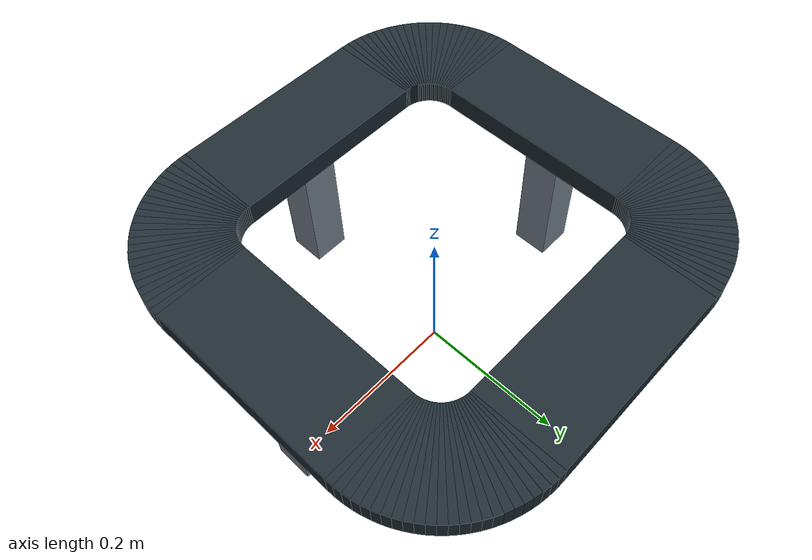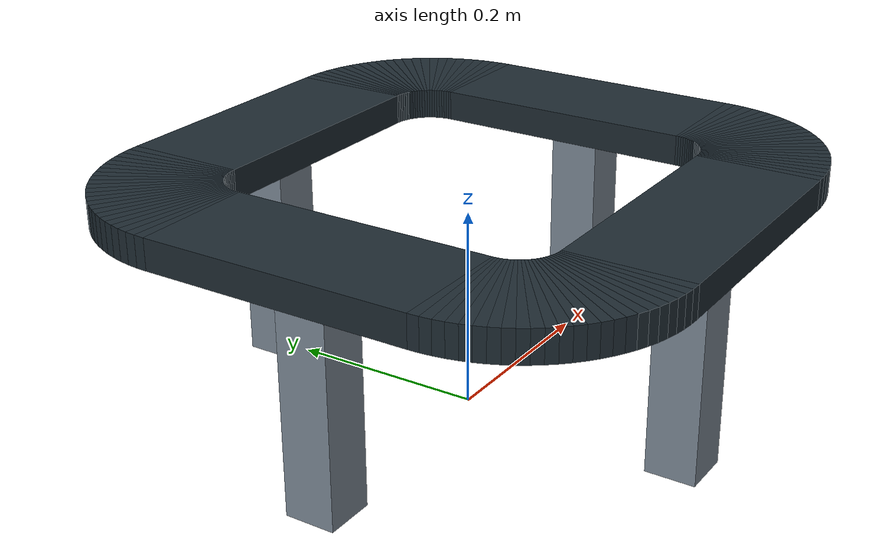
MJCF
<mujoco model="rounded_square_conveyor">
  <compiler angle="radian" />
  <custom>
    <numeric name="conveyor_path_parameters" data="0.23 0.1 0.06" />
  </custom>
  <asset>
    <mesh name="belt_mesh_0" vertex="0.170000000 0.130000000 -0.015000000 0.290000000 0.130000000 -0.015000000 0.289657428 0.140464501 -0.015000000 0.169914357 0.132616125 -0.015000000 0.170000000 0.130000000 0.015000000 0.290000000 0.130000000 0.015000000 0.289657428 0.140464501 0.015000000 0.169914357 0.132616125 0.015000000" />
    <mesh name="belt_mesh_1" vertex="0.169914357 0.132616125 -0.015000000 0.289657428 0.140464501 -0.015000000 0.288631178 0.150884191 -0.015000000 0.169657794 0.135221048 -0.015000000 0.169914357 0.132616125 0.015000000 0.289657428 0.140464501 0.015000000 0.288631178 0.150884191 0.015000000 0.169657794 0.135221048 0.015000000" />
    <mesh name="belt_mesh_2" vertex="0.169657794 0.135221048 -0.015000000 0.288631178 0.150884191 -0.015000000 0.286925645 0.161214452 -0.015000000 0.169231411 0.137803613 -0.015000000 0.169657794 0.135221048 0.015000000 0.288631178 0.150884191 0.015000000 0.286925645 0.161214452 0.015000000 0.169231411 0.137803613 0.015000000" />
    <mesh name="belt_mesh_3" vertex="0.169231411 0.137803613 -0.015000000 0.286925645 0.161214452 -0.015000000 0.284548132 0.171411047 -0.015000000 0.168637033 0.140352762 -0.015000000 0.169231411 0.137803613 0.015000000 0.286925645 0.161214452 0.015000000 0.284548132 0.171411047 0.015000000 0.168637033 0.140352762 0.015000000" />
    <mesh name="belt_mesh_4" vertex="0.168637033 0.140352762 -0.015000000 0.284548132 0.171411047 -0.015000000 0.281508821 0.181430314 -0.015000000 0.167877205 0.142857579 -0.015000000 0.168637033 0.140352762 0.015000000 0.284548132 0.171411047 0.015000000 0.281508821 0.181430314 0.015000000 0.167877205 0.142857579 0.015000000" />
    <mesh name="belt_mesh_5" vertex="0.167877205 0.142857579 -0.015000000 0.281508821 0.181430314 -0.015000000 0.277820725 0.191229349 -0.015000000 0.166955181 0.145307337 -0.015000000 0.167877205 0.142857579 0.015000000 0.281508821 0.181430314 0.015000000 0.277820725 0.191229349 0.015000000 0.166955181 0.145307337 0.015000000" />
    <mesh name="belt_mesh_6" vertex="0.166955181 0.145307337 -0.015000000 0.277820725 0.191229349 -0.015000000 0.273499639 0.200766190 -0.015000000 0.165874910 0.147691548 -0.015000000 0.166955181 0.145307337 0.015000000 0.277820725 0.191229349 0.015000000 0.273499639 0.200766190 0.015000000 0.165874910 0.147691548 0.015000000" />
    <mesh name="belt_mesh_7" vertex="0.165874910 0.147691548 -0.015000000 0.273499639 0.200766190 -0.015000000 0.268564065 0.210000000 -0.015000000 0.164641016 0.150000000 -0.015000000 0.165874910 0.147691548 0.015000000 0.273499639 0.200766190 0.015000000 0.268564065 0.210000000 0.015000000 0.164641016 0.150000000 0.015000000" />
    <mesh name="belt_mesh_8" vertex="0.164641016 0.150000000 -0.015000000 0.268564065 0.210000000 -0.015000000 0.263035138 0.218891237 -0.015000000 0.163258784 0.152222809 -0.015000000 0.164641016 0.150000000 0.015000000 0.268564065 0.210000000 0.015000000 0.263035138 0.218891237 0.015000000 0.163258784 0.152222809 0.015000000" />
    <mesh name="belt_mesh_9" vertex="0.163258784 0.152222809 -0.015000000 0.263035138 0.218891237 -0.015000000 0.256936534 0.227401829 -0.015000000 0.161734134 0.154350457 -0.015000000 0.163258784 0.152222809 0.015000000 0.263035138 0.218891237 0.015000000 0.256936534 0.227401829 0.015000000 0.161734134 0.154350457 0.015000000" />
    <mesh name="belt_mesh_10" vertex="0.161734134 0.154350457 -0.015000000 0.256936534 0.227401829 -0.015000000 0.250294369 0.235495330 -0.015000000 0.160073592 0.156373833 -0.015000000 0.161734134 0.154350457 0.015000000 0.256936534 0.227401829 0.015000000 0.250294369 0.235495330 0.015000000 0.160073592 0.156373833 0.015000000" />
    <mesh name="belt_mesh_11" vertex="0.160073592 0.156373833 -0.015000000 0.250294369 0.235495330 -0.015000000 0.243137085 0.243137085 -0.015000000 0.158284271 0.158284271 -0.015000000 0.160073592 0.156373833 0.015000000 0.250294369 0.235495330 0.015000000 0.243137085 0.243137085 0.015000000 0.158284271 0.158284271 0.015000000" />
    <mesh name="belt_mesh_12" vertex="0.158284271 0.158284271 -0.015000000 0.243137085 0.243137085 -0.015000000 0.235495330 0.250294369 -0.015000000 0.156373833 0.160073592 -0.015000000 0.158284271 0.158284271 0.015000000 0.243137085 0.243137085 0.015000000 0.235495330 0.250294369 0.015000000 0.156373833 0.160073592 0.015000000" />
    <mesh name="belt_mesh_13" vertex="0.156373833 0.160073592 -0.015000000 0.235495330 0.250294369 -0.015000000 0.227401829 0.256936534 -0.015000000 0.154350457 0.161734134 -0.015000000 0.156373833 0.160073592 0.015000000 0.235495330 0.250294369 0.015000000 0.227401829 0.256936534 0.015000000 0.154350457 0.161734134 0.015000000" />
    <mesh name="belt_mesh_14" vertex="0.154350457 0.161734134 -0.015000000 0.227401829 0.256936534 -0.015000000 0.218891237 0.263035138 -0.015000000 0.152222809 0.163258784 -0.015000000 0.154350457 0.161734134 0.015000000 0.227401829 0.256936534 0.015000000 0.218891237 0.263035138 0.015000000 0.152222809 0.163258784 0.015000000" />
    <mesh name="belt_mesh_15" vertex="0.152222809 0.163258784 -0.015000000 0.218891237 0.263035138 -0.015000000 0.210000000 0.268564065 -0.015000000 0.150000000 0.164641016 -0.015000000 0.152222809 0.163258784 0.015000000 0.218891237 0.263035138 0.015000000 0.210000000 0.268564065 0.015000000 0.150000000 0.164641016 0.015000000" />
    <mesh name="belt_mesh_16" vertex="0.150000000 0.164641016 -0.015000000 0.210000000 0.268564065 -0.015000000 0.200766190 0.273499639 -0.015000000 0.147691548 0.165874910 -0.015000000 0.150000000 0.164641016 0.015000000 0.210000000 0.268564065 0.015000000 0.200766190 0.273499639 0.015000000 0.147691548 0.165874910 0.015000000" />
    <mesh name="belt_mesh_17" vertex="0.147691548 0.165874910 -0.015000000 0.200766190 0.273499639 -0.015000000 0.191229349 0.277820725 -0.015000000 0.145307337 0.166955181 -0.015000000 0.147691548 0.165874910 0.015000000 0.200766190 0.273499639 0.015000000 0.191229349 0.277820725 0.015000000 0.145307337 0.166955181 0.015000000" />
    <mesh name="belt_mesh_18" vertex="0.145307337 0.166955181 -0.015000000 0.191229349 0.277820725 -0.015000000 0.181430314 0.281508821 -0.015000000 0.142857579 0.167877205 -0.015000000 0.145307337 0.166955181 0.015000000 0.191229349 0.277820725 0.015000000 0.181430314 0.281508821 0.015000000 0.142857579 0.167877205 0.015000000" />
    <mesh name="belt_mesh_19" vertex="0.142857579 0.167877205 -0.015000000 0.181430314 0.281508821 -0.015000000 0.171411047 0.284548132 -0.015000000 0.140352762 0.168637033 -0.015000000 0.142857579 0.167877205 0.015000000 0.181430314 0.281508821 0.015000000 0.171411047 0.284548132 0.015000000 0.140352762 0.168637033 0.015000000" />
    <mesh name="belt_mesh_20" vertex="0.140352762 0.168637033 -0.015000000 0.171411047 0.284548132 -0.015000000 0.161214452 0.286925645 -0.015000000 0.137803613 0.169231411 -0.015000000 0.140352762 0.168637033 0.015000000 0.171411047 0.284548132 0.015000000 0.161214452 0.286925645 0.015000000 0.137803613 0.169231411 0.015000000" />
    <mesh name="belt_mesh_21" vertex="0.137803613 0.169231411 -0.015000000 0.161214452 0.286925645 -0.015000000 0.150884191 0.288631178 -0.015000000 0.135221048 0.169657794 -0.015000000 0.137803613 0.169231411 0.015000000 0.161214452 0.286925645 0.015000000 0.150884191 0.288631178 0.015000000 0.135221048 0.169657794 0.015000000" />
    <mesh name="belt_mesh_22" vertex="0.135221048 0.169657794 -0.015000000 0.150884191 0.288631178 -0.015000000 0.140464501 0.289657428 -0.015000000 0.132616125 0.169914357 -0.015000000 0.135221048 0.169657794 0.015000000 0.150884191 0.288631178 0.015000000 0.140464501 0.289657428 0.015000000 0.132616125 0.169914357 0.015000000" />
    <mesh name="belt_mesh_23" vertex="0.132616125 0.169914357 -0.015000000 0.140464501 0.289657428 -0.015000000 0.130000000 0.290000000 -0.015000000 0.130000000 0.170000000 -0.015000000 0.132616125 0.169914357 0.015000000 0.140464501 0.289657428 0.015000000 0.130000000 0.290000000 0.015000000 0.130000000 0.170000000 0.015000000" />
    <mesh name="belt_mesh_24" vertex="-0.130000000 0.170000000 -0.015000000 -0.130000000 0.290000000 -0.015000000 -0.140464501 0.289657428 -0.015000000 -0.132616125 0.169914357 -0.015000000 -0.130000000 0.170000000 0.015000000 -0.130000000 0.290000000 0.015000000 -0.140464501 0.289657428 0.015000000 -0.132616125 0.169914357 0.015000000" />
    <mesh name="belt_mesh_25" vertex="-0.132616125 0.169914357 -0.015000000 -0.140464501 0.289657428 -0.015000000 -0.150884191 0.288631178 -0.015000000 -0.135221048 0.169657794 -0.015000000 -0.132616125 0.169914357 0.015000000 -0.140464501 0.289657428 0.015000000 -0.150884191 0.288631178 0.015000000 -0.135221048 0.169657794 0.015000000" />
    <mesh name="belt_mesh_26" vertex="-0.135221048 0.169657794 -0.015000000 -0.150884191 0.288631178 -0.015000000 -0.161214452 0.286925645 -0.015000000 -0.137803613 0.169231411 -0.015000000 -0.135221048 0.169657794 0.015000000 -0.150884191 0.288631178 0.015000000 -0.161214452 0.286925645 0.015000000 -0.137803613 0.169231411 0.015000000" />
    <mesh name="belt_mesh_27" vertex="-0.137803613 0.169231411 -0.015000000 -0.161214452 0.286925645 -0.015000000 -0.171411047 0.284548132 -0.015000000 -0.140352762 0.168637033 -0.015000000 -0.137803613 0.169231411 0.015000000 -0.161214452 0.286925645 0.015000000 -0.171411047 0.284548132 0.015000000 -0.140352762 0.168637033 0.015000000" />
    <mesh name="belt_mesh_28" vertex="-0.140352762 0.168637033 -0.015000000 -0.171411047 0.284548132 -0.015000000 -0.181430314 0.281508821 -0.015000000 -0.142857579 0.167877205 -0.015000000 -0.140352762 0.168637033 0.015000000 -0.171411047 0.284548132 0.015000000 -0.181430314 0.281508821 0.015000000 -0.142857579 0.167877205 0.015000000" />
    <mesh name="belt_mesh_29" vertex="-0.142857579 0.167877205 -0.015000000 -0.181430314 0.281508821 -0.015000000 -0.191229349 0.277820725 -0.015000000 -0.145307337 0.166955181 -0.015000000 -0.142857579 0.167877205 0.015000000 -0.181430314 0.281508821 0.015000000 -0.191229349 0.277820725 0.015000000 -0.145307337 0.166955181 0.015000000" />
    <mesh name="belt_mesh_30" vertex="-0.145307337 0.166955181 -0.015000000 -0.191229349 0.277820725 -0.015000000 -0.200766190 0.273499639 -0.015000000 -0.147691548 0.165874910 -0.015000000 -0.145307337 0.166955181 0.015000000 -0.191229349 0.277820725 0.015000000 -0.200766190 0.273499639 0.015000000 -0.147691548 0.165874910 0.015000000" />
    <mesh name="belt_mesh_31" vertex="-0.147691548 0.165874910 -0.015000000 -0.200766190 0.273499639 -0.015000000 -0.210000000 0.268564065 -0.015000000 -0.150000000 0.164641016 -0.015000000 -0.147691548 0.165874910 0.015000000 -0.200766190 0.273499639 0.015000000 -0.210000000 0.268564065 0.015000000 -0.150000000 0.164641016 0.015000000" />
    <mesh name="belt_mesh_32" vertex="-0.150000000 0.164641016 -0.015000000 -0.210000000 0.268564065 -0.015000000 -0.218891237 0.263035138 -0.015000000 -0.152222809 0.163258784 -0.015000000 -0.150000000 0.164641016 0.015000000 -0.210000000 0.268564065 0.015000000 -0.218891237 0.263035138 0.015000000 -0.152222809 0.163258784 0.015000000" />
    <mesh name="belt_mesh_33" vertex="-0.152222809 0.163258784 -0.015000000 -0.218891237 0.263035138 -0.015000000 -0.227401829 0.256936534 -0.015000000 -0.154350457 0.161734134 -0.015000000 -0.152222809 0.163258784 0.015000000 -0.218891237 0.263035138 0.015000000 -0.227401829 0.256936534 0.015000000 -0.154350457 0.161734134 0.015000000" />
    <mesh name="belt_mesh_34" vertex="-0.154350457 0.161734134 -0.015000000 -0.227401829 0.256936534 -0.015000000 -0.235495330 0.250294369 -0.015000000 -0.156373833 0.160073592 -0.015000000 -0.154350457 0.161734134 0.015000000 -0.227401829 0.256936534 0.015000000 -0.235495330 0.250294369 0.015000000 -0.156373833 0.160073592 0.015000000" />
    <mesh name="belt_mesh_35" vertex="-0.156373833 0.160073592 -0.015000000 -0.235495330 0.250294369 -0.015000000 -0.243137085 0.243137085 -0.015000000 -0.158284271 0.158284271 -0.015000000 -0.156373833 0.160073592 0.015000000 -0.235495330 0.250294369 0.015000000 -0.243137085 0.243137085 0.015000000 -0.158284271 0.158284271 0.015000000" />
    <mesh name="belt_mesh_36" vertex="-0.158284271 0.158284271 -0.015000000 -0.243137085 0.243137085 -0.015000000 -0.250294369 0.235495330 -0.015000000 -0.160073592 0.156373833 -0.015000000 -0.158284271 0.158284271 0.015000000 -0.243137085 0.243137085 0.015000000 -0.250294369 0.235495330 0.015000000 -0.160073592 0.156373833 0.015000000" />
    <mesh name="belt_mesh_37" vertex="-0.160073592 0.156373833 -0.015000000 -0.250294369 0.235495330 -0.015000000 -0.256936534 0.227401829 -0.015000000 -0.161734134 0.154350457 -0.015000000 -0.160073592 0.156373833 0.015000000 -0.250294369 0.235495330 0.015000000 -0.256936534 0.227401829 0.015000000 -0.161734134 0.154350457 0.015000000" />
    <mesh name="belt_mesh_38" vertex="-0.161734134 0.154350457 -0.015000000 -0.256936534 0.227401829 -0.015000000 -0.263035138 0.218891237 -0.015000000 -0.163258784 0.152222809 -0.015000000 -0.161734134 0.154350457 0.015000000 -0.256936534 0.227401829 0.015000000 -0.263035138 0.218891237 0.015000000 -0.163258784 0.152222809 0.015000000" />
    <mesh name="belt_mesh_39" vertex="-0.163258784 0.152222809 -0.015000000 -0.263035138 0.218891237 -0.015000000 -0.268564065 0.210000000 -0.015000000 -0.164641016 0.150000000 -0.015000000 -0.163258784 0.152222809 0.015000000 -0.263035138 0.218891237 0.015000000 -0.268564065 0.210000000 0.015000000 -0.164641016 0.150000000 0.015000000" />
    <mesh name="belt_mesh_40" vertex="-0.164641016 0.150000000 -0.015000000 -0.268564065 0.210000000 -0.015000000 -0.273499639 0.200766190 -0.015000000 -0.165874910 0.147691548 -0.015000000 -0.164641016 0.150000000 0.015000000 -0.268564065 0.210000000 0.015000000 -0.273499639 0.200766190 0.015000000 -0.165874910 0.147691548 0.015000000" />
    <mesh name="belt_mesh_41" vertex="-0.165874910 0.147691548 -0.015000000 -0.273499639 0.200766190 -0.015000000 -0.277820725 0.191229349 -0.015000000 -0.166955181 0.145307337 -0.015000000 -0.165874910 0.147691548 0.015000000 -0.273499639 0.200766190 0.015000000 -0.277820725 0.191229349 0.015000000 -0.166955181 0.145307337 0.015000000" />
    <mesh name="belt_mesh_42" vertex="-0.166955181 0.145307337 -0.015000000 -0.277820725 0.191229349 -0.015000000 -0.281508821 0.181430314 -0.015000000 -0.167877205 0.142857579 -0.015000000 -0.166955181 0.145307337 0.015000000 -0.277820725 0.191229349 0.015000000 -0.281508821 0.181430314 0.015000000 -0.167877205 0.142857579 0.015000000" />
    <mesh name="belt_mesh_43" vertex="-0.167877205 0.142857579 -0.015000000 -0.281508821 0.181430314 -0.015000000 -0.284548132 0.171411047 -0.015000000 -0.168637033 0.140352762 -0.015000000 -0.167877205 0.142857579 0.015000000 -0.281508821 0.181430314 0.015000000 -0.284548132 0.171411047 0.015000000 -0.168637033 0.140352762 0.015000000" />
    <mesh name="belt_mesh_44" vertex="-0.168637033 0.140352762 -0.015000000 -0.284548132 0.171411047 -0.015000000 -0.286925645 0.161214452 -0.015000000 -0.169231411 0.137803613 -0.015000000 -0.168637033 0.140352762 0.015000000 -0.284548132 0.171411047 0.015000000 -0.286925645 0.161214452 0.015000000 -0.169231411 0.137803613 0.015000000" />
    <mesh name="belt_mesh_45" vertex="-0.169231411 0.137803613 -0.015000000 -0.286925645 0.161214452 -0.015000000 -0.288631178 0.150884191 -0.015000000 -0.169657794 0.135221048 -0.015000000 -0.169231411 0.137803613 0.015000000 -0.286925645 0.161214452 0.015000000 -0.288631178 0.150884191 0.015000000 -0.169657794 0.135221048 0.015000000" />
    <mesh name="belt_mesh_46" vertex="-0.169657794 0.135221048 -0.015000000 -0.288631178 0.150884191 -0.015000000 -0.289657428 0.140464501 -0.015000000 -0.169914357 0.132616125 -0.015000000 -0.169657794 0.135221048 0.015000000 -0.288631178 0.150884191 0.015000000 -0.289657428 0.140464501 0.015000000 -0.169914357 0.132616125 0.015000000" />
    <mesh name="belt_mesh_47" vertex="-0.169914357 0.132616125 -0.015000000 -0.289657428 0.140464501 -0.015000000 -0.290000000 0.130000000 -0.015000000 -0.170000000 0.130000000 -0.015000000 -0.169914357 0.132616125 0.015000000 -0.289657428 0.140464501 0.015000000 -0.290000000 0.130000000 0.015000000 -0.170000000 0.130000000 0.015000000" />
    <mesh name="belt_mesh_48" vertex="-0.170000000 -0.130000000 -0.015000000 -0.290000000 -0.130000000 -0.015000000 -0.289657428 -0.140464501 -0.015000000 -0.169914357 -0.132616125 -0.015000000 -0.170000000 -0.130000000 0.015000000 -0.290000000 -0.130000000 0.015000000 -0.289657428 -0.140464501 0.015000000 -0.169914357 -0.132616125 0.015000000" />
    <mesh name="belt_mesh_49" vertex="-0.169914357 -0.132616125 -0.015000000 -0.289657428 -0.140464501 -0.015000000 -0.288631178 -0.150884191 -0.015000000 -0.169657794 -0.135221048 -0.015000000 -0.169914357 -0.132616125 0.015000000 -0.289657428 -0.140464501 0.015000000 -0.288631178 -0.150884191 0.015000000 -0.169657794 -0.135221048 0.015000000" />
    <mesh name="belt_mesh_50" vertex="-0.169657794 -0.135221048 -0.015000000 -0.288631178 -0.150884191 -0.015000000 -0.286925645 -0.161214452 -0.015000000 -0.169231411 -0.137803613 -0.015000000 -0.169657794 -0.135221048 0.015000000 -0.288631178 -0.150884191 0.015000000 -0.286925645 -0.161214452 0.015000000 -0.169231411 -0.137803613 0.015000000" />
    <mesh name="belt_mesh_51" vertex="-0.169231411 -0.137803613 -0.015000000 -0.286925645 -0.161214452 -0.015000000 -0.284548132 -0.171411047 -0.015000000 -0.168637033 -0.140352762 -0.015000000 -0.169231411 -0.137803613 0.015000000 -0.286925645 -0.161214452 0.015000000 -0.284548132 -0.171411047 0.015000000 -0.168637033 -0.140352762 0.015000000" />
    <mesh name="belt_mesh_52" vertex="-0.168637033 -0.140352762 -0.015000000 -0.284548132 -0.171411047 -0.015000000 -0.281508821 -0.181430314 -0.015000000 -0.167877205 -0.142857579 -0.015000000 -0.168637033 -0.140352762 0.015000000 -0.284548132 -0.171411047 0.015000000 -0.281508821 -0.181430314 0.015000000 -0.167877205 -0.142857579 0.015000000" />
    <mesh name="belt_mesh_53" vertex="-0.167877205 -0.142857579 -0.015000000 -0.281508821 -0.181430314 -0.015000000 -0.277820725 -0.191229349 -0.015000000 -0.166955181 -0.145307337 -0.015000000 -0.167877205 -0.142857579 0.015000000 -0.281508821 -0.181430314 0.015000000 -0.277820725 -0.191229349 0.015000000 -0.166955181 -0.145307337 0.015000000" />
    <mesh name="belt_mesh_54" vertex="-0.166955181 -0.145307337 -0.015000000 -0.277820725 -0.191229349 -0.015000000 -0.273499639 -0.200766190 -0.015000000 -0.165874910 -0.147691548 -0.015000000 -0.166955181 -0.145307337 0.015000000 -0.277820725 -0.191229349 0.015000000 -0.273499639 -0.200766190 0.015000000 -0.165874910 -0.147691548 0.015000000" />
    <mesh name="belt_mesh_55" vertex="-0.165874910 -0.147691548 -0.015000000 -0.273499639 -0.200766190 -0.015000000 -0.268564065 -0.210000000 -0.015000000 -0.164641016 -0.150000000 -0.015000000 -0.165874910 -0.147691548 0.015000000 -0.273499639 -0.200766190 0.015000000 -0.268564065 -0.210000000 0.015000000 -0.164641016 -0.150000000 0.015000000" />
    <mesh name="belt_mesh_56" vertex="-0.164641016 -0.150000000 -0.015000000 -0.268564065 -0.210000000 -0.015000000 -0.263035138 -0.218891237 -0.015000000 -0.163258784 -0.152222809 -0.015000000 -0.164641016 -0.150000000 0.015000000 -0.268564065 -0.210000000 0.015000000 -0.263035138 -0.218891237 0.015000000 -0.163258784 -0.152222809 0.015000000" />
    <mesh name="belt_mesh_57" vertex="-0.163258784 -0.152222809 -0.015000000 -0.263035138 -0.218891237 -0.015000000 -0.256936534 -0.227401829 -0.015000000 -0.161734134 -0.154350457 -0.015000000 -0.163258784 -0.152222809 0.015000000 -0.263035138 -0.218891237 0.015000000 -0.256936534 -0.227401829 0.015000000 -0.161734134 -0.154350457 0.015000000" />
    <mesh name="belt_mesh_58" vertex="-0.161734134 -0.154350457 -0.015000000 -0.256936534 -0.227401829 -0.015000000 -0.250294369 -0.235495330 -0.015000000 -0.160073592 -0.156373833 -0.015000000 -0.161734134 -0.154350457 0.015000000 -0.256936534 -0.227401829 0.015000000 -0.250294369 -0.235495330 0.015000000 -0.160073592 -0.156373833 0.015000000" />
    <mesh name="belt_mesh_59" vertex="-0.160073592 -0.156373833 -0.015000000 -0.250294369 -0.235495330 -0.015000000 -0.243137085 -0.243137085 -0.015000000 -0.158284271 -0.158284271 -0.015000000 -0.160073592 -0.156373833 0.015000000 -0.250294369 -0.235495330 0.015000000 -0.243137085 -0.243137085 0.015000000 -0.158284271 -0.158284271 0.015000000" />
    <mesh name="belt_mesh_60" vertex="-0.158284271 -0.158284271 -0.015000000 -0.243137085 -0.243137085 -0.015000000 -0.235495330 -0.250294369 -0.015000000 -0.156373833 -0.160073592 -0.015000000 -0.158284271 -0.158284271 0.015000000 -0.243137085 -0.243137085 0.015000000 -0.235495330 -0.250294369 0.015000000 -0.156373833 -0.160073592 0.015000000" />
    <mesh name="belt_mesh_61" vertex="-0.156373833 -0.160073592 -0.015000000 -0.235495330 -0.250294369 -0.015000000 -0.227401829 -0.256936534 -0.015000000 -0.154350457 -0.161734134 -0.015000000 -0.156373833 -0.160073592 0.015000000 -0.235495330 -0.250294369 0.015000000 -0.227401829 -0.256936534 0.015000000 -0.154350457 -0.161734134 0.015000000" />
    <mesh name="belt_mesh_62" vertex="-0.154350457 -0.161734134 -0.015000000 -0.227401829 -0.256936534 -0.015000000 -0.218891237 -0.263035138 -0.015000000 -0.152222809 -0.163258784 -0.015000000 -0.154350457 -0.161734134 0.015000000 -0.227401829 -0.256936534 0.015000000 -0.218891237 -0.263035138 0.015000000 -0.152222809 -0.163258784 0.015000000" />
    <mesh name="belt_mesh_63" vertex="-0.152222809 -0.163258784 -0.015000000 -0.218891237 -0.263035138 -0.015000000 -0.210000000 -0.268564065 -0.015000000 -0.150000000 -0.164641016 -0.015000000 -0.152222809 -0.163258784 0.015000000 -0.218891237 -0.263035138 0.015000000 -0.210000000 -0.268564065 0.015000000 -0.150000000 -0.164641016 0.015000000" />
    <mesh name="belt_mesh_64" vertex="-0.150000000 -0.164641016 -0.015000000 -0.210000000 -0.268564065 -0.015000000 -0.200766190 -0.273499639 -0.015000000 -0.147691548 -0.165874910 -0.015000000 -0.150000000 -0.164641016 0.015000000 -0.210000000 -0.268564065 0.015000000 -0.200766190 -0.273499639 0.015000000 -0.147691548 -0.165874910 0.015000000" />
    <mesh name="belt_mesh_65" vertex="-0.147691548 -0.165874910 -0.015000000 -0.200766190 -0.273499639 -0.015000000 -0.191229349 -0.277820725 -0.015000000 -0.145307337 -0.166955181 -0.015000000 -0.147691548 -0.165874910 0.015000000 -0.200766190 -0.273499639 0.015000000 -0.191229349 -0.277820725 0.015000000 -0.145307337 -0.166955181 0.015000000" />
    <mesh name="belt_mesh_66" vertex="-0.145307337 -0.166955181 -0.015000000 -0.191229349 -0.277820725 -0.015000000 -0.181430314 -0.281508821 -0.015000000 -0.142857579 -0.167877205 -0.015000000 -0.145307337 -0.166955181 0.015000000 -0.191229349 -0.277820725 0.015000000 -0.181430314 -0.281508821 0.015000000 -0.142857579 -0.167877205 0.015000000" />
    <mesh name="belt_mesh_67" vertex="-0.142857579 -0.167877205 -0.015000000 -0.181430314 -0.281508821 -0.015000000 -0.171411047 -0.284548132 -0.015000000 -0.140352762 -0.168637033 -0.015000000 -0.142857579 -0.167877205 0.015000000 -0.181430314 -0.281508821 0.015000000 -0.171411047 -0.284548132 0.015000000 -0.140352762 -0.168637033 0.015000000" />
    <mesh name="belt_mesh_68" vertex="-0.140352762 -0.168637033 -0.015000000 -0.171411047 -0.284548132 -0.015000000 -0.161214452 -0.286925645 -0.015000000 -0.137803613 -0.169231411 -0.015000000 -0.140352762 -0.168637033 0.015000000 -0.171411047 -0.284548132 0.015000000 -0.161214452 -0.286925645 0.015000000 -0.137803613 -0.169231411 0.015000000" />
    <mesh name="belt_mesh_69" vertex="-0.137803613 -0.169231411 -0.015000000 -0.161214452 -0.286925645 -0.015000000 -0.150884191 -0.288631178 -0.015000000 -0.135221048 -0.169657794 -0.015000000 -0.137803613 -0.169231411 0.015000000 -0.161214452 -0.286925645 0.015000000 -0.150884191 -0.288631178 0.015000000 -0.135221048 -0.169657794 0.015000000" />
    <mesh name="belt_mesh_70" vertex="-0.135221048 -0.169657794 -0.015000000 -0.150884191 -0.288631178 -0.015000000 -0.140464501 -0.289657428 -0.015000000 -0.132616125 -0.169914357 -0.015000000 -0.135221048 -0.169657794 0.015000000 -0.150884191 -0.288631178 0.015000000 -0.140464501 -0.289657428 0.015000000 -0.132616125 -0.169914357 0.015000000" />
    <mesh name="belt_mesh_71" vertex="-0.132616125 -0.169914357 -0.015000000 -0.140464501 -0.289657428 -0.015000000 -0.130000000 -0.290000000 -0.015000000 -0.130000000 -0.170000000 -0.015000000 -0.132616125 -0.169914357 0.015000000 -0.140464501 -0.289657428 0.015000000 -0.130000000 -0.290000000 0.015000000 -0.130000000 -0.170000000 0.015000000" />
    <mesh name="belt_mesh_72" vertex="0.130000000 -0.170000000 -0.015000000 0.130000000 -0.290000000 -0.015000000 0.140464501 -0.289657428 -0.015000000 0.132616125 -0.169914357 -0.015000000 0.130000000 -0.170000000 0.015000000 0.130000000 -0.290000000 0.015000000 0.140464501 -0.289657428 0.015000000 0.132616125 -0.169914357 0.015000000" />
    <mesh name="belt_mesh_73" vertex="0.132616125 -0.169914357 -0.015000000 0.140464501 -0.289657428 -0.015000000 0.150884191 -0.288631178 -0.015000000 0.135221048 -0.169657794 -0.015000000 0.132616125 -0.169914357 0.015000000 0.140464501 -0.289657428 0.015000000 0.150884191 -0.288631178 0.015000000 0.135221048 -0.169657794 0.015000000" />
    <mesh name="belt_mesh_74" vertex="0.135221048 -0.169657794 -0.015000000 0.150884191 -0.288631178 -0.015000000 0.161214452 -0.286925645 -0.015000000 0.137803613 -0.169231411 -0.015000000 0.135221048 -0.169657794 0.015000000 0.150884191 -0.288631178 0.015000000 0.161214452 -0.286925645 0.015000000 0.137803613 -0.169231411 0.015000000" />
    <mesh name="belt_mesh_75" vertex="0.137803613 -0.169231411 -0.015000000 0.161214452 -0.286925645 -0.015000000 0.171411047 -0.284548132 -0.015000000 0.140352762 -0.168637033 -0.015000000 0.137803613 -0.169231411 0.015000000 0.161214452 -0.286925645 0.015000000 0.171411047 -0.284548132 0.015000000 0.140352762 -0.168637033 0.015000000" />
    <mesh name="belt_mesh_76" vertex="0.140352762 -0.168637033 -0.015000000 0.171411047 -0.284548132 -0.015000000 0.181430314 -0.281508821 -0.015000000 0.142857579 -0.167877205 -0.015000000 0.140352762 -0.168637033 0.015000000 0.171411047 -0.284548132 0.015000000 0.181430314 -0.281508821 0.015000000 0.142857579 -0.167877205 0.015000000" />
    <mesh name="belt_mesh_77" vertex="0.142857579 -0.167877205 -0.015000000 0.181430314 -0.281508821 -0.015000000 0.191229349 -0.277820725 -0.015000000 0.145307337 -0.166955181 -0.015000000 0.142857579 -0.167877205 0.015000000 0.181430314 -0.281508821 0.015000000 0.191229349 -0.277820725 0.015000000 0.145307337 -0.166955181 0.015000000" />
    <mesh name="belt_mesh_78" vertex="0.145307337 -0.166955181 -0.015000000 0.191229349 -0.277820725 -0.015000000 0.200766190 -0.273499639 -0.015000000 0.147691548 -0.165874910 -0.015000000 0.145307337 -0.166955181 0.015000000 0.191229349 -0.277820725 0.015000000 0.200766190 -0.273499639 0.015000000 0.147691548 -0.165874910 0.015000000" />
    <mesh name="belt_mesh_79" vertex="0.147691548 -0.165874910 -0.015000000 0.200766190 -0.273499639 -0.015000000 0.210000000 -0.268564065 -0.015000000 0.150000000 -0.164641016 -0.015000000 0.147691548 -0.165874910 0.015000000 0.200766190 -0.273499639 0.015000000 0.210000000 -0.268564065 0.015000000 0.150000000 -0.164641016 0.015000000" />
    <mesh name="belt_mesh_80" vertex="0.150000000 -0.164641016 -0.015000000 0.210000000 -0.268564065 -0.015000000 0.218891237 -0.263035138 -0.015000000 0.152222809 -0.163258784 -0.015000000 0.150000000 -0.164641016 0.015000000 0.210000000 -0.268564065 0.015000000 0.218891237 -0.263035138 0.015000000 0.152222809 -0.163258784 0.015000000" />
    <mesh name="belt_mesh_81" vertex="0.152222809 -0.163258784 -0.015000000 0.218891237 -0.263035138 -0.015000000 0.227401829 -0.256936534 -0.015000000 0.154350457 -0.161734134 -0.015000000 0.152222809 -0.163258784 0.015000000 0.218891237 -0.263035138 0.015000000 0.227401829 -0.256936534 0.015000000 0.154350457 -0.161734134 0.015000000" />
    <mesh name="belt_mesh_82" vertex="0.154350457 -0.161734134 -0.015000000 0.227401829 -0.256936534 -0.015000000 0.235495330 -0.250294369 -0.015000000 0.156373833 -0.160073592 -0.015000000 0.154350457 -0.161734134 0.015000000 0.227401829 -0.256936534 0.015000000 0.235495330 -0.250294369 0.015000000 0.156373833 -0.160073592 0.015000000" />
    <mesh name="belt_mesh_83" vertex="0.156373833 -0.160073592 -0.015000000 0.235495330 -0.250294369 -0.015000000 0.243137085 -0.243137085 -0.015000000 0.158284271 -0.158284271 -0.015000000 0.156373833 -0.160073592 0.015000000 0.235495330 -0.250294369 0.015000000 0.243137085 -0.243137085 0.015000000 0.158284271 -0.158284271 0.015000000" />
    <mesh name="belt_mesh_84" vertex="0.158284271 -0.158284271 -0.015000000 0.243137085 -0.243137085 -0.015000000 0.250294369 -0.235495330 -0.015000000 0.160073592 -0.156373833 -0.015000000 0.158284271 -0.158284271 0.015000000 0.243137085 -0.243137085 0.015000000 0.250294369 -0.235495330 0.015000000 0.160073592 -0.156373833 0.015000000" />
    <mesh name="belt_mesh_85" vertex="0.160073592 -0.156373833 -0.015000000 0.250294369 -0.235495330 -0.015000000 0.256936534 -0.227401829 -0.015000000 0.161734134 -0.154350457 -0.015000000 0.160073592 -0.156373833 0.015000000 0.250294369 -0.235495330 0.015000000 0.256936534 -0.227401829 0.015000000 0.161734134 -0.154350457 0.015000000" />
    <mesh name="belt_mesh_86" vertex="0.161734134 -0.154350457 -0.015000000 0.256936534 -0.227401829 -0.015000000 0.263035138 -0.218891237 -0.015000000 0.163258784 -0.152222809 -0.015000000 0.161734134 -0.154350457 0.015000000 0.256936534 -0.227401829 0.015000000 0.263035138 -0.218891237 0.015000000 0.163258784 -0.152222809 0.015000000" />
    <mesh name="belt_mesh_87" vertex="0.163258784 -0.152222809 -0.015000000 0.263035138 -0.218891237 -0.015000000 0.268564065 -0.210000000 -0.015000000 0.164641016 -0.150000000 -0.015000000 0.163258784 -0.152222809 0.015000000 0.263035138 -0.218891237 0.015000000 0.268564065 -0.210000000 0.015000000 0.164641016 -0.150000000 0.015000000" />
    <mesh name="belt_mesh_88" vertex="0.164641016 -0.150000000 -0.015000000 0.268564065 -0.210000000 -0.015000000 0.273499639 -0.200766190 -0.015000000 0.165874910 -0.147691548 -0.015000000 0.164641016 -0.150000000 0.015000000 0.268564065 -0.210000000 0.015000000 0.273499639 -0.200766190 0.015000000 0.165874910 -0.147691548 0.015000000" />
    <mesh name="belt_mesh_89" vertex="0.165874910 -0.147691548 -0.015000000 0.273499639 -0.200766190 -0.015000000 0.277820725 -0.191229349 -0.015000000 0.166955181 -0.145307337 -0.015000000 0.165874910 -0.147691548 0.015000000 0.273499639 -0.200766190 0.015000000 0.277820725 -0.191229349 0.015000000 0.166955181 -0.145307337 0.015000000" />
    <mesh name="belt_mesh_90" vertex="0.166955181 -0.145307337 -0.015000000 0.277820725 -0.191229349 -0.015000000 0.281508821 -0.181430314 -0.015000000 0.167877205 -0.142857579 -0.015000000 0.166955181 -0.145307337 0.015000000 0.277820725 -0.191229349 0.015000000 0.281508821 -0.181430314 0.015000000 0.167877205 -0.142857579 0.015000000" />
    <mesh name="belt_mesh_91" vertex="0.167877205 -0.142857579 -0.015000000 0.281508821 -0.181430314 -0.015000000 0.284548132 -0.171411047 -0.015000000 0.168637033 -0.140352762 -0.015000000 0.167877205 -0.142857579 0.015000000 0.281508821 -0.181430314 0.015000000 0.284548132 -0.171411047 0.015000000 0.168637033 -0.140352762 0.015000000" />
    <mesh name="belt_mesh_92" vertex="0.168637033 -0.140352762 -0.015000000 0.284548132 -0.171411047 -0.015000000 0.286925645 -0.161214452 -0.015000000 0.169231411 -0.137803613 -0.015000000 0.168637033 -0.140352762 0.015000000 0.284548132 -0.171411047 0.015000000 0.286925645 -0.161214452 0.015000000 0.169231411 -0.137803613 0.015000000" />
    <mesh name="belt_mesh_93" vertex="0.169231411 -0.137803613 -0.015000000 0.286925645 -0.161214452 -0.015000000 0.288631178 -0.150884191 -0.015000000 0.169657794 -0.135221048 -0.015000000 0.169231411 -0.137803613 0.015000000 0.286925645 -0.161214452 0.015000000 0.288631178 -0.150884191 0.015000000 0.169657794 -0.135221048 0.015000000" />
    <mesh name="belt_mesh_94" vertex="0.169657794 -0.135221048 -0.015000000 0.288631178 -0.150884191 -0.015000000 0.289657428 -0.140464501 -0.015000000 0.169914357 -0.132616125 -0.015000000 0.169657794 -0.135221048 0.015000000 0.288631178 -0.150884191 0.015000000 0.289657428 -0.140464501 0.015000000 0.169914357 -0.132616125 0.015000000" />
    <mesh name="belt_mesh_95" vertex="0.169914357 -0.132616125 -0.015000000 0.289657428 -0.140464501 -0.015000000 0.290000000 -0.130000000 -0.015000000 0.170000000 -0.130000000 -0.015000000 0.169914357 -0.132616125 0.015000000 0.289657428 -0.140464501 0.015000000 0.290000000 -0.130000000 0.015000000 0.170000000 -0.130000000 0.015000000" />
  </asset>
  <worldbody>
    <body name="conveyor">
      <site name="conveyor_origin" size="0.002" rgba="0 0 0 0" />
      <!--Fixed surface: conveyor.py supplies contact-gated transport forces.-->
      <geom name="conveyor_belt_0" type="mesh" mesh="belt_mesh_0" pos="0 0 0.235" friction="0.8 0.005 0.0001" rgba="0.12 0.17 0.20 1" />
      <geom name="conveyor_belt_1" type="mesh" mesh="belt_mesh_1" pos="0 0 0.235" friction="0.8 0.005 0.0001" rgba="0.12 0.17 0.20 1" />
      <geom name="conveyor_belt_2" type="mesh" mesh="belt_mesh_2" pos="0 0 0.235" friction="0.8 0.005 0.0001" rgba="0.12 0.17 0.20 1" />
      <geom name="conveyor_belt_3" type="mesh" mesh="belt_mesh_3" pos="0 0 0.235" friction="0.8 0.005 0.0001" rgba="0.12 0.17 0.20 1" />
      <geom name="conveyor_belt_4" type="mesh" mesh="belt_mesh_4" pos="0 0 0.235" friction="0.8 0.005 0.0001" rgba="0.12 0.17 0.20 1" />
      <geom name="conveyor_belt_5" type="mesh" mesh="belt_mesh_5" pos="0 0 0.235" friction="0.8 0.005 0.0001" rgba="0.12 0.17 0.20 1" />
      <geom name="conveyor_belt_6" type="mesh" mesh="belt_mesh_6" pos="0 0 0.235" friction="0.8 0.005 0.0001" rgba="0.12 0.17 0.20 1" />
      <geom name="conveyor_belt_7" type="mesh" mesh="belt_mesh_7" pos="0 0 0.235" friction="0.8 0.005 0.0001" rgba="0.12 0.17 0.20 1" />
      <geom name="conveyor_belt_8" type="mesh" mesh="belt_mesh_8" pos="0 0 0.235" friction="0.8 0.005 0.0001" rgba="0.12 0.17 0.20 1" />
      <geom name="conveyor_belt_9" type="mesh" mesh="belt_mesh_9" pos="0 0 0.235" friction="0.8 0.005 0.0001" rgba="0.12 0.17 0.20 1" />
      <geom name="conveyor_belt_10" type="mesh" mesh="belt_mesh_10" pos="0 0 0.235" friction="0.8 0.005 0.0001" rgba="0.12 0.17 0.20 1" />
      <geom name="conveyor_belt_11" type="mesh" mesh="belt_mesh_11" pos="0 0 0.235" friction="0.8 0.005 0.0001" rgba="0.12 0.17 0.20 1" />
      <geom name="conveyor_belt_12" type="mesh" mesh="belt_mesh_12" pos="0 0 0.235" friction="0.8 0.005 0.0001" rgba="0.12 0.17 0.20 1" />
      <geom name="conveyor_belt_13" type="mesh" mesh="belt_mesh_13" pos="0 0 0.235" friction="0.8 0.005 0.0001" rgba="0.12 0.17 0.20 1" />
      <geom name="conveyor_belt_14" type="mesh" mesh="belt_mesh_14" pos="0 0 0.235" friction="0.8 0.005 0.0001" rgba="0.12 0.17 0.20 1" />
      <geom name="conveyor_belt_15" type="mesh" mesh="belt_mesh_15" pos="0 0 0.235" friction="0.8 0.005 0.0001" rgba="0.12 0.17 0.20 1" />
      <geom name="conveyor_belt_16" type="mesh" mesh="belt_mesh_16" pos="0 0 0.235" friction="0.8 0.005 0.0001" rgba="0.12 0.17 0.20 1" />
      <geom name="conveyor_belt_17" type="mesh" mesh="belt_mesh_17" pos="0 0 0.235" friction="0.8 0.005 0.0001" rgba="0.12 0.17 0.20 1" />
      <geom name="conveyor_belt_18" type="mesh" mesh="belt_mesh_18" pos="0 0 0.235" friction="0.8 0.005 0.0001" rgba="0.12 0.17 0.20 1" />
      <geom name="conveyor_belt_19" type="mesh" mesh="belt_mesh_19" pos="0 0 0.235" friction="0.8 0.005 0.0001" rgba="0.12 0.17 0.20 1" />
      <geom name="conveyor_belt_20" type="mesh" mesh="belt_mesh_20" pos="0 0 0.235" friction="0.8 0.005 0.0001" rgba="0.12 0.17 0.20 1" />
      <geom name="conveyor_belt_21" type="mesh" mesh="belt_mesh_21" pos="0 0 0.235" friction="0.8 0.005 0.0001" rgba="0.12 0.17 0.20 1" />
      <geom name="conveyor_belt_22" type="mesh" mesh="belt_mesh_22" pos="0 0 0.235" friction="0.8 0.005 0.0001" rgba="0.12 0.17 0.20 1" />
      <geom name="conveyor_belt_23" type="mesh" mesh="belt_mesh_23" pos="0 0 0.235" friction="0.8 0.005 0.0001" rgba="0.12 0.17 0.20 1" />
      <geom name="conveyor_belt_24" type="mesh" mesh="belt_mesh_24" pos="0 0 0.235" friction="0.8 0.005 0.0001" rgba="0.12 0.17 0.20 1" />
      <geom name="conveyor_belt_25" type="mesh" mesh="belt_mesh_25" pos="0 0 0.235" friction="0.8 0.005 0.0001" rgba="0.12 0.17 0.20 1" />
      <geom name="conveyor_belt_26" type="mesh" mesh="belt_mesh_26" pos="0 0 0.235" friction="0.8 0.005 0.0001" rgba="0.12 0.17 0.20 1" />
      <geom name="conveyor_belt_27" type="mesh" mesh="belt_mesh_27" pos="0 0 0.235" friction="0.8 0.005 0.0001" rgba="0.12 0.17 0.20 1" />
      <geom name="conveyor_belt_28" type="mesh" mesh="belt_mesh_28" pos="0 0 0.235" friction="0.8 0.005 0.0001" rgba="0.12 0.17 0.20 1" />
      <geom name="conveyor_belt_29" type="mesh" mesh="belt_mesh_29" pos="0 0 0.235" friction="0.8 0.005 0.0001" rgba="0.12 0.17 0.20 1" />
      <geom name="conveyor_belt_30" type="mesh" mesh="belt_mesh_30" pos="0 0 0.235" friction="0.8 0.005 0.0001" rgba="0.12 0.17 0.20 1" />
      <geom name="conveyor_belt_31" type="mesh" mesh="belt_mesh_31" pos="0 0 0.235" friction="0.8 0.005 0.0001" rgba="0.12 0.17 0.20 1" />
      <geom name="conveyor_belt_32" type="mesh" mesh="belt_mesh_32" pos="0 0 0.235" friction="0.8 0.005 0.0001" rgba="0.12 0.17 0.20 1" />
      <geom name="conveyor_belt_33" type="mesh" mesh="belt_mesh_33" pos="0 0 0.235" friction="0.8 0.005 0.0001" rgba="0.12 0.17 0.20 1" />
      <geom name="conveyor_belt_34" type="mesh" mesh="belt_mesh_34" pos="0 0 0.235" friction="0.8 0.005 0.0001" rgba="0.12 0.17 0.20 1" />
      <geom name="conveyor_belt_35" type="mesh" mesh="belt_mesh_35" pos="0 0 0.235" friction="0.8 0.005 0.0001" rgba="0.12 0.17 0.20 1" />
      <geom name="conveyor_belt_36" type="mesh" mesh="belt_mesh_36" pos="0 0 0.235" friction="0.8 0.005 0.0001" rgba="0.12 0.17 0.20 1" />
      <geom name="conveyor_belt_37" type="mesh" mesh="belt_mesh_37" pos="0 0 0.235" friction="0.8 0.005 0.0001" rgba="0.12 0.17 0.20 1" />
      <geom name="conveyor_belt_38" type="mesh" mesh="belt_mesh_38" pos="0 0 0.235" friction="0.8 0.005 0.0001" rgba="0.12 0.17 0.20 1" />
      <geom name="conveyor_belt_39" type="mesh" mesh="belt_mesh_39" pos="0 0 0.235" friction="0.8 0.005 0.0001" rgba="0.12 0.17 0.20 1" />
      <geom name="conveyor_belt_40" type="mesh" mesh="belt_mesh_40" pos="0 0 0.235" friction="0.8 0.005 0.0001" rgba="0.12 0.17 0.20 1" />
      <geom name="conveyor_belt_41" type="mesh" mesh="belt_mesh_41" pos="0 0 0.235" friction="0.8 0.005 0.0001" rgba="0.12 0.17 0.20 1" />
      <geom name="conveyor_belt_42" type="mesh" mesh="belt_mesh_42" pos="0 0 0.235" friction="0.8 0.005 0.0001" rgba="0.12 0.17 0.20 1" />
      <geom name="conveyor_belt_43" type="mesh" mesh="belt_mesh_43" pos="0 0 0.235" friction="0.8 0.005 0.0001" rgba="0.12 0.17 0.20 1" />
      <geom name="conveyor_belt_44" type="mesh" mesh="belt_mesh_44" pos="0 0 0.235" friction="0.8 0.005 0.0001" rgba="0.12 0.17 0.20 1" />
      <geom name="conveyor_belt_45" type="mesh" mesh="belt_mesh_45" pos="0 0 0.235" friction="0.8 0.005 0.0001" rgba="0.12 0.17 0.20 1" />
      <geom name="conveyor_belt_46" type="mesh" mesh="belt_mesh_46" pos="0 0 0.235" friction="0.8 0.005 0.0001" rgba="0.12 0.17 0.20 1" />
      <geom name="conveyor_belt_47" type="mesh" mesh="belt_mesh_47" pos="0 0 0.235" friction="0.8 0.005 0.0001" rgba="0.12 0.17 0.20 1" />
      <geom name="conveyor_belt_48" type="mesh" mesh="belt_mesh_48" pos="0 0 0.235" friction="0.8 0.005 0.0001" rgba="0.12 0.17 0.20 1" />
      <geom name="conveyor_belt_49" type="mesh" mesh="belt_mesh_49" pos="0 0 0.235" friction="0.8 0.005 0.0001" rgba="0.12 0.17 0.20 1" />
      <geom name="conveyor_belt_50" type="mesh" mesh="belt_mesh_50" pos="0 0 0.235" friction="0.8 0.005 0.0001" rgba="0.12 0.17 0.20 1" />
      <geom name="conveyor_belt_51" type="mesh" mesh="belt_mesh_51" pos="0 0 0.235" friction="0.8 0.005 0.0001" rgba="0.12 0.17 0.20 1" />
      <geom name="conveyor_belt_52" type="mesh" mesh="belt_mesh_52" pos="0 0 0.235" friction="0.8 0.005 0.0001" rgba="0.12 0.17 0.20 1" />
      <geom name="conveyor_belt_53" type="mesh" mesh="belt_mesh_53" pos="0 0 0.235" friction="0.8 0.005 0.0001" rgba="0.12 0.17 0.20 1" />
      <geom name="conveyor_belt_54" type="mesh" mesh="belt_mesh_54" pos="0 0 0.235" friction="0.8 0.005 0.0001" rgba="0.12 0.17 0.20 1" />
      <geom name="conveyor_belt_55" type="mesh" mesh="belt_mesh_55" pos="0 0 0.235" friction="0.8 0.005 0.0001" rgba="0.12 0.17 0.20 1" />
      <geom name="conveyor_belt_56" type="mesh" mesh="belt_mesh_56" pos="0 0 0.235" friction="0.8 0.005 0.0001" rgba="0.12 0.17 0.20 1" />
      <geom name="conveyor_belt_57" type="mesh" mesh="belt_mesh_57" pos="0 0 0.235" friction="0.8 0.005 0.0001" rgba="0.12 0.17 0.20 1" />
      <geom name="conveyor_belt_58" type="mesh" mesh="belt_mesh_58" pos="0 0 0.235" friction="0.8 0.005 0.0001" rgba="0.12 0.17 0.20 1" />
      <geom name="conveyor_belt_59" type="mesh" mesh="belt_mesh_59" pos="0 0 0.235" friction="0.8 0.005 0.0001" rgba="0.12 0.17 0.20 1" />
      <geom name="conveyor_belt_60" type="mesh" mesh="belt_mesh_60" pos="0 0 0.235" friction="0.8 0.005 0.0001" rgba="0.12 0.17 0.20 1" />
      <geom name="conveyor_belt_61" type="mesh" mesh="belt_mesh_61" pos="0 0 0.235" friction="0.8 0.005 0.0001" rgba="0.12 0.17 0.20 1" />
      <geom name="conveyor_belt_62" type="mesh" mesh="belt_mesh_62" pos="0 0 0.235" friction="0.8 0.005 0.0001" rgba="0.12 0.17 0.20 1" />
      <geom name="conveyor_belt_63" type="mesh" mesh="belt_mesh_63" pos="0 0 0.235" friction="0.8 0.005 0.0001" rgba="0.12 0.17 0.20 1" />
      <geom name="conveyor_belt_64" type="mesh" mesh="belt_mesh_64" pos="0 0 0.235" friction="0.8 0.005 0.0001" rgba="0.12 0.17 0.20 1" />
      <geom name="conveyor_belt_65" type="mesh" mesh="belt_mesh_65" pos="0 0 0.235" friction="0.8 0.005 0.0001" rgba="0.12 0.17 0.20 1" />
      <geom name="conveyor_belt_66" type="mesh" mesh="belt_mesh_66" pos="0 0 0.235" friction="0.8 0.005 0.0001" rgba="0.12 0.17 0.20 1" />
      <geom name="conveyor_belt_67" type="mesh" mesh="belt_mesh_67" pos="0 0 0.235" friction="0.8 0.005 0.0001" rgba="0.12 0.17 0.20 1" />
      <geom name="conveyor_belt_68" type="mesh" mesh="belt_mesh_68" pos="0 0 0.235" friction="0.8 0.005 0.0001" rgba="0.12 0.17 0.20 1" />
      <geom name="conveyor_belt_69" type="mesh" mesh="belt_mesh_69" pos="0 0 0.235" friction="0.8 0.005 0.0001" rgba="0.12 0.17 0.20 1" />
      <geom name="conveyor_belt_70" type="mesh" mesh="belt_mesh_70" pos="0 0 0.235" friction="0.8 0.005 0.0001" rgba="0.12 0.17 0.20 1" />
      <geom name="conveyor_belt_71" type="mesh" mesh="belt_mesh_71" pos="0 0 0.235" friction="0.8 0.005 0.0001" rgba="0.12 0.17 0.20 1" />
      <geom name="conveyor_belt_72" type="mesh" mesh="belt_mesh_72" pos="0 0 0.235" friction="0.8 0.005 0.0001" rgba="0.12 0.17 0.20 1" />
      <geom name="conveyor_belt_73" type="mesh" mesh="belt_mesh_73" pos="0 0 0.235" friction="0.8 0.005 0.0001" rgba="0.12 0.17 0.20 1" />
      <geom name="conveyor_belt_74" type="mesh" mesh="belt_mesh_74" pos="0 0 0.235" friction="0.8 0.005 0.0001" rgba="0.12 0.17 0.20 1" />
      <geom name="conveyor_belt_75" type="mesh" mesh="belt_mesh_75" pos="0 0 0.235" friction="0.8 0.005 0.0001" rgba="0.12 0.17 0.20 1" />
      <geom name="conveyor_belt_76" type="mesh" mesh="belt_mesh_76" pos="0 0 0.235" friction="0.8 0.005 0.0001" rgba="0.12 0.17 0.20 1" />
      <geom name="conveyor_belt_77" type="mesh" mesh="belt_mesh_77" pos="0 0 0.235" friction="0.8 0.005 0.0001" rgba="0.12 0.17 0.20 1" />
      <geom name="conveyor_belt_78" type="mesh" mesh="belt_mesh_78" pos="0 0 0.235" friction="0.8 0.005 0.0001" rgba="0.12 0.17 0.20 1" />
      <geom name="conveyor_belt_79" type="mesh" mesh="belt_mesh_79" pos="0 0 0.235" friction="0.8 0.005 0.0001" rgba="0.12 0.17 0.20 1" />
      <geom name="conveyor_belt_80" type="mesh" mesh="belt_mesh_80" pos="0 0 0.235" friction="0.8 0.005 0.0001" rgba="0.12 0.17 0.20 1" />
      <geom name="conveyor_belt_81" type="mesh" mesh="belt_mesh_81" pos="0 0 0.235" friction="0.8 0.005 0.0001" rgba="0.12 0.17 0.20 1" />
      <geom name="conveyor_belt_82" type="mesh" mesh="belt_mesh_82" pos="0 0 0.235" friction="0.8 0.005 0.0001" rgba="0.12 0.17 0.20 1" />
      <geom name="conveyor_belt_83" type="mesh" mesh="belt_mesh_83" pos="0 0 0.235" friction="0.8 0.005 0.0001" rgba="0.12 0.17 0.20 1" />
      <geom name="conveyor_belt_84" type="mesh" mesh="belt_mesh_84" pos="0 0 0.235" friction="0.8 0.005 0.0001" rgba="0.12 0.17 0.20 1" />
      <geom name="conveyor_belt_85" type="mesh" mesh="belt_mesh_85" pos="0 0 0.235" friction="0.8 0.005 0.0001" rgba="0.12 0.17 0.20 1" />
      <geom name="conveyor_belt_86" type="mesh" mesh="belt_mesh_86" pos="0 0 0.235" friction="0.8 0.005 0.0001" rgba="0.12 0.17 0.20 1" />
      <geom name="conveyor_belt_87" type="mesh" mesh="belt_mesh_87" pos="0 0 0.235" friction="0.8 0.005 0.0001" rgba="0.12 0.17 0.20 1" />
      <geom name="conveyor_belt_88" type="mesh" mesh="belt_mesh_88" pos="0 0 0.235" friction="0.8 0.005 0.0001" rgba="0.12 0.17 0.20 1" />
      <geom name="conveyor_belt_89" type="mesh" mesh="belt_mesh_89" pos="0 0 0.235" friction="0.8 0.005 0.0001" rgba="0.12 0.17 0.20 1" />
      <geom name="conveyor_belt_90" type="mesh" mesh="belt_mesh_90" pos="0 0 0.235" friction="0.8 0.005 0.0001" rgba="0.12 0.17 0.20 1" />
      <geom name="conveyor_belt_91" type="mesh" mesh="belt_mesh_91" pos="0 0 0.235" friction="0.8 0.005 0.0001" rgba="0.12 0.17 0.20 1" />
      <geom name="conveyor_belt_92" type="mesh" mesh="belt_mesh_92" pos="0 0 0.235" friction="0.8 0.005 0.0001" rgba="0.12 0.17 0.20 1" />
      <geom name="conveyor_belt_93" type="mesh" mesh="belt_mesh_93" pos="0 0 0.235" friction="0.8 0.005 0.0001" rgba="0.12 0.17 0.20 1" />
      <geom name="conveyor_belt_94" type="mesh" mesh="belt_mesh_94" pos="0 0 0.235" friction="0.8 0.005 0.0001" rgba="0.12 0.17 0.20 1" />
      <geom name="conveyor_belt_95" type="mesh" mesh="belt_mesh_95" pos="0 0 0.235" friction="0.8 0.005 0.0001" rgba="0.12 0.17 0.20 1" />
      <geom name="conveyor_belt_top" type="box" pos="0 0.23 0.235" size="0.13 .06 .015" friction="0.8 0.005 0.0001" rgba="0.12 0.17 0.20 1" />
      <geom name="conveyor_belt_bottom" type="box" pos="0 -0.23 0.235" size="0.13 .06 .015" friction="0.8 0.005 0.0001" rgba="0.12 0.17 0.20 1" />
      <geom name="conveyor_belt_left" type="box" pos="-0.23 0 0.235" size=".06 0.13 .015" friction="0.8 0.005 0.0001" rgba="0.12 0.17 0.20 1" />
      <geom name="conveyor_belt_right" type="box" pos="0.23 0 0.235" size=".06 0.13 .015" friction="0.8 0.005 0.0001" rgba="0.12 0.17 0.20 1" />
      <geom name="conveyor_leg_0" type="box" pos="0 0.23 .11" size=".025 .025 .11" rgba=".5 .55 .6 1" />
      <geom name="conveyor_leg_1" type="box" pos="0 -0.23 .11" size=".025 .025 .11" rgba=".5 .55 .6 1" />
      <geom name="conveyor_leg_2" type="box" pos="0.23 0 .11" size=".025 .025 .11" rgba=".5 .55 .6 1" />
      <geom name="conveyor_leg_3" type="box" pos="-0.23 0 .11" size=".025 .025 .11" rgba=".5 .55 .6 1" />
    </body>
  </worldbody>
</mujoco>
